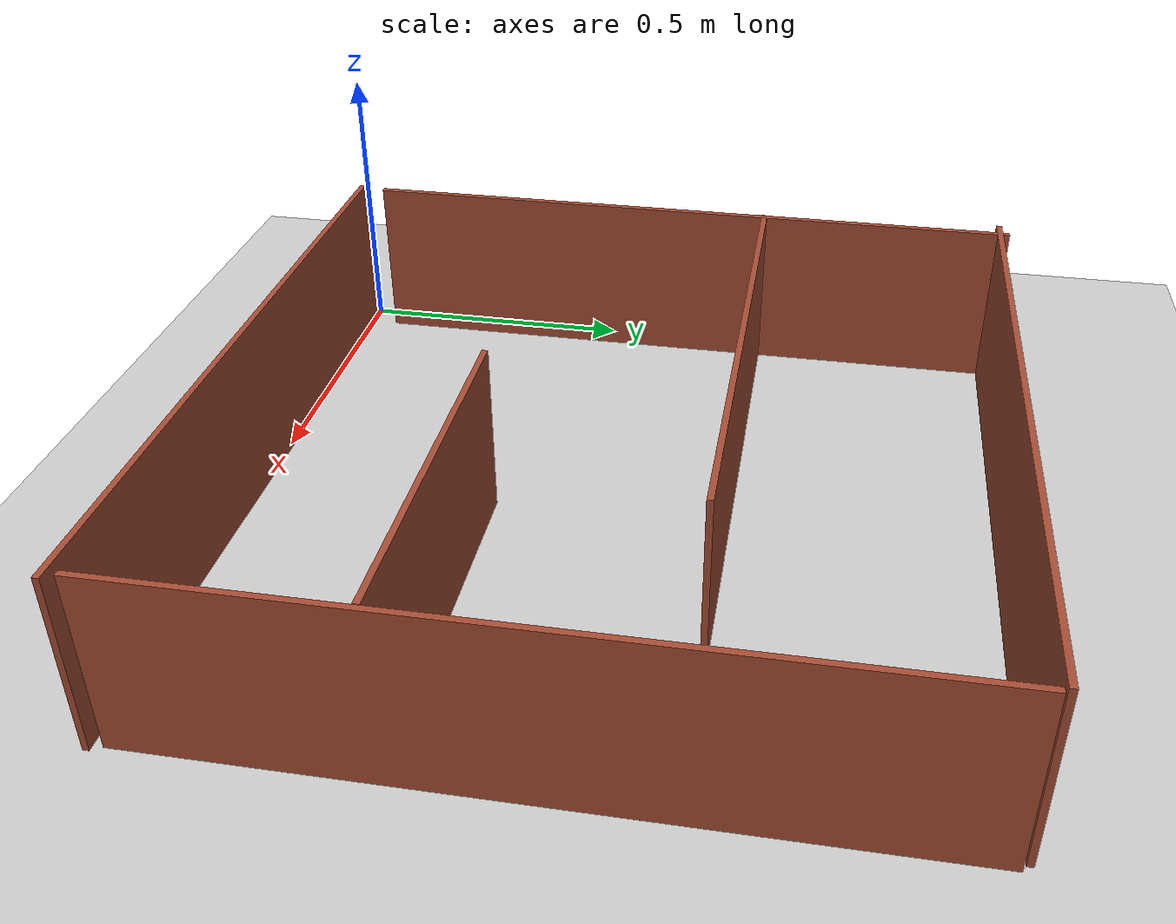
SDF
<sdf version="1.7">
 <world name="default">
  <light name="sun" type="directional">
   <pose>0 0 10 0 -0 0</pose>
   <diffuse>0.8 0.8 0.8 1</diffuse>
   <specular>0.2 0.2 0.2 1</specular>
   <attenuation>
    <range>1000</range>
    <constant>0.9</constant>
    <linear>0.01</linear>
    <quadratic>0.001</quadratic>
   </attenuation>
   <direction>-0.5 0.1 -0.9</direction>
   <spot><inner_angle>0</inner_angle><outer_angle>0</outer_angle><falloff>0</falloff></spot>
  </light>
  <model name="ground_plane">
   <static>1</static>
   <link name="link">
    <collision name="collision">
     <geometry><plane><normal>0 0 1</normal><size>100 100</size></plane></geometry>
     <surface>
      <contact><collide_bitmask>65535</collide_bitmask></contact>
      <friction><ode><mu>100</mu><mu2>50</mu2></ode></friction>
     </surface>
    </collision>
    <visual name="visual">
     <cast_shadows>0</cast_shadows>
     <geometry><plane><normal>0 0 1</normal><size>100 100</size></plane></geometry>
     <material>
      <script><uri>file://media/materials/scripts/gazebo.material</uri><name>Gazebo/Grey</name></script>
     </material>
    </visual>
   </link>
  </model>
  <gravity>0 0 -9.8</gravity>
  <magnetic_field>6e-06 2.3e-05 -4.2e-05</magnetic_field>
  <atmosphere type="adiabatic"/>
  <physics type="ode">
   <max_step_size>0.001</max_step_size>
   <real_time_factor>1</real_time_factor>
   <real_time_update_rate>1000</real_time_update_rate>
  </physics>
  <scene><ambient>0.4 0.4 0.4 1</ambient><background>0.7 0.7 0.7 1</background><shadows>1</shadows></scene>
  <spherical_coordinates>
   <surface_model>EARTH_WGS84</surface_model>
   <latitude_deg>0</latitude_deg>
   <longitude_deg>0</longitude_deg>
   <elevation>0</elevation>
   <heading_deg>0</heading_deg>
  </spherical_coordinates>
  <model name="Pared60">
   <pose>1.22819 0.899912 0 0 -0 0</pose>
   <link name="Wall_0">
    <collision name="Wall_0_Collision">
     <geometry><box><size>0.6 0.01 0.3</size></box></geometry>
     <pose>0 0 0.15 0 -0 0</pose>
    </collision>
    <visual name="Wall_0_Visual">
     <pose>0 0 0.15 0 -0 0</pose>
     <geometry><box><size>0.6 0.01 0.3</size></box></geometry>
     <material>
      <script><uri>file://media/materials/scripts/gazebo.material</uri><name>Gazebo/Bricks</name></script>
      <ambient>1 1 1 1</ambient>
     </material>
     <meta><layer>0</layer></meta>
    </visual>
    <pose>-0.3225 -0.4975 0 0 -0 0</pose>
   </link>
   <static>1</static>
  </model>
  <model name="Pared120">
   <pose>0.650859 0.497726 0 0 -0 0</pose>
   <link name="Wall_0">
    <collision name="Wall_0_Collision">
     <geometry><box><size>1.2 0.01 0.3</size></box></geometry>
     <pose>0 0 0.15 0 -0 0</pose>
    </collision>
    <visual name="Wall_0_Visual">
     <pose>0 0 0.15 0 -0 0</pose>
     <geometry><box><size>1.2 0.01 0.3</size></box></geometry>
     <material>
      <script><uri>file://media/materials/scripts/gazebo.material</uri><name>Gazebo/Bricks</name></script>
      <ambient>1 1 1 1</ambient>
     </material>
     <meta><layer>0</layer></meta>
    </visual>
    <pose>-0.0225 -0.4975 0 0 -0 0</pose>
   </link>
   <static>1</static>
  </model>
  <model name="Pared120_0">
   <pose>0.534797 0.625224 0 0 0 -1.56883</pose>
   <link name="Wall_0">
    <collision name="Wall_0_Collision">
     <geometry><box><size>1.2 0.01 0.3</size></box></geometry>
     <pose>0 0 0.15 0 -0 0</pose>
    </collision>
    <visual name="Wall_0_Visual">
     <pose>0 0 0.15 0 -0 0</pose>
     <geometry><box><size>1.2 0.01 0.3</size></box></geometry>
     <material>
      <script><uri>file://media/materials/scripts/gazebo.material</uri><name>Gazebo/Bricks</name></script>
      <ambient>1 1 1 1</ambient>
     </material>
     <meta><layer>0</layer></meta>
    </visual>
    <pose>-0.0225 -0.4975 0 0 -0 0</pose>
   </link>
   <static>1</static>
  </model>
  <model name="Pared120_1">
   <pose>1.70789 0.601534 0 0 0 -1.56368</pose>
   <link name="Wall_0">
    <collision name="Wall_0_Collision">
     <geometry><box><size>1.2 0.01 0.3</size></box></geometry>
     <pose>0 0 0.15 0 -0 0</pose>
    </collision>
    <visual name="Wall_0_Visual">
     <pose>0 0 0.15 0 -0 0</pose>
     <geometry><box><size>1.2 0.01 0.3</size></box></geometry>
     <material>
      <script><uri>file://media/materials/scripts/gazebo.material</uri><name>Gazebo/Bricks</name></script>
      <ambient>1 1 1 1</ambient>
     </material>
     <meta><layer>0</layer></meta>
    </visual>
    <pose>-0.0225 -0.4975 0 0 -0 0</pose>
   </link>
   <static>1</static>
  </model>
  <model name="Pared120_2">
   <pose>0.624604 1.72754 0 0 -0 0</pose>
   <link name="Wall_0">
    <collision name="Wall_0_Collision">
     <geometry><box><size>1.2 0.01 0.3</size></box></geometry>
     <pose>0 0 0.15 0 -0 0</pose>
    </collision>
    <visual name="Wall_0_Visual">
     <pose>0 0 0.15 0 -0 0</pose>
     <geometry><box><size>1.2 0.01 0.3</size></box></geometry>
     <material>
      <script><uri>file://media/materials/scripts/gazebo.material</uri><name>Gazebo/Bricks</name></script>
      <ambient>1 1 1 1</ambient>
     </material>
     <meta><layer>0</layer></meta>
    </visual>
    <pose>-0.0225 -0.4975 0 0 -0 0</pose>
   </link>
   <static>1</static>
  </model>
  <model name="Pared90">
   <pose>0.65296 1.29321 0 0 -0 0</pose>
   <link name="Wall_0">
    <collision name="Wall_0_Collision">
     <geometry><box><size>0.9 0.01 0.3</size></box></geometry>
     <pose>0 0 0.15 0 -0 0</pose>
    </collision>
    <visual name="Wall_0_Visual">
     <pose>0 0 0.15 0 -0 0</pose>
     <geometry><box><size>0.9 0.01 0.3</size></box></geometry>
     <material>
      <script><uri>file://media/materials/scripts/gazebo.material</uri><name>Gazebo/Bricks</name></script>
      <ambient>1 1 1 1</ambient>
     </material>
     <meta><layer>0</layer></meta>
    </visual>
    <pose>-0.1725 -0.4975 0 0 -0 0</pose>
   </link>
   <static>1</static>
  </model>
 </world>
</sdf>
